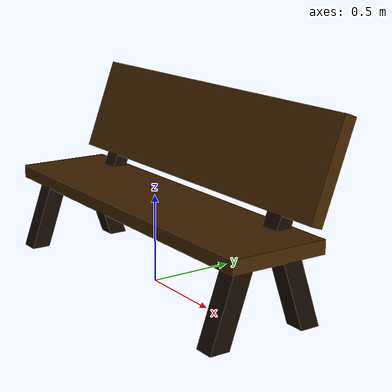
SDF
<?xml version="1.0" ?>

<sdf version="1.4">
  <model name="iai_bench">
    <static>true</static>
    <link name="iai_bench">
      <collision name="collision">
	<geometry>
            <mesh>
	      <uri>model://bench/bench.stl</uri>
	    </mesh>
          </geometry>
      </collision>
      <visual name="vis">
        <cast_shadows>false</cast_shadows>

	<geometry>
            <mesh>
	      <uri>model://bench/bench.dae</uri>
	    </mesh>
          </geometry>
      </visual>

    </link>
          <plugin name="scanable"
              filename="libiai_object_transmitter.so">
            <object_type>terrain</object_type><!-- this is used to determine -->
            <absolute_detection>true</absolute_detection>
            <attribute key="otype" value="bench"/>
            <attribute key="manmade" value="true"/>
            <attribute key="navigation" value="none"/>
      </plugin>
  </model>
</sdf>
